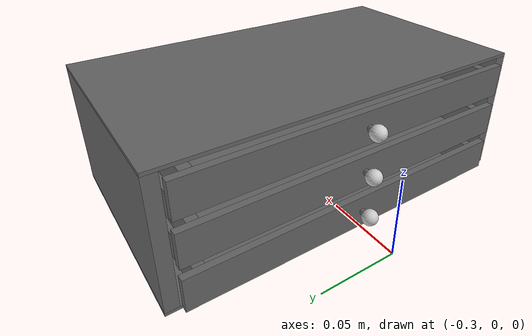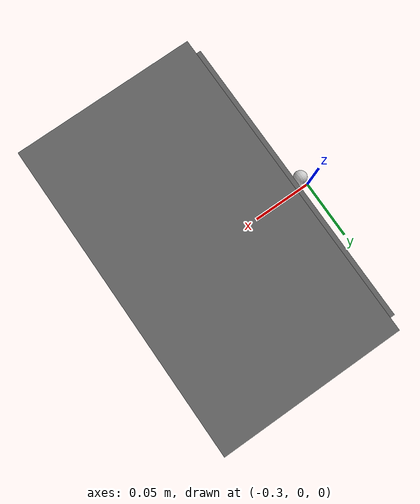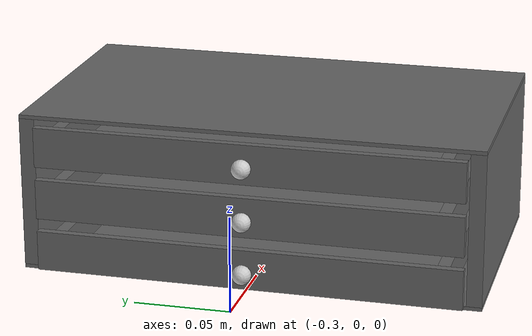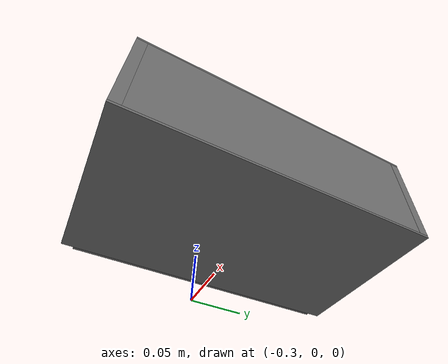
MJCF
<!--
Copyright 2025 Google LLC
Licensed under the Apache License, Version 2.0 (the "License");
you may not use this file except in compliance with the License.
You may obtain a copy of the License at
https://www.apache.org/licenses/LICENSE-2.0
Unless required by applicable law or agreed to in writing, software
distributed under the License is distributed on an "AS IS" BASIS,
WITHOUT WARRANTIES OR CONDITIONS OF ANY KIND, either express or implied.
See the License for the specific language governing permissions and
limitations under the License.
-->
<mujoco model="mk1157_counter">
  <compiler meshdir="meshes" angle="radian" autolimits="true"/>
  <asset>
    <mesh name="mk1157_counter_collision_01" file="/home/bfl3/bfl_works/new_lerobot/lerobot/src/lerobot/simulation/assets/edr/drawer/meshes/mk1157_counter_collision_01.stl" scale="0.4 0.23 0.1"/>
    <mesh name="mk1157_counter_collision_02" file="/home/bfl3/bfl_works/new_lerobot/lerobot/src/lerobot/simulation/assets/edr/drawer/meshes/mk1157_counter_collision_02.stl" scale="0.4 0.23 0.1"/>
    <mesh name="mk1157_counter_collision_03" file="/home/bfl3/bfl_works/new_lerobot/lerobot/src/lerobot/simulation/assets/edr/drawer/meshes/mk1157_counter_collision_03.stl" scale="0.4 0.23 0.1"/>
    <mesh name="mk1157_counter_collision_04" file="/home/bfl3/bfl_works/new_lerobot/lerobot/src/lerobot/simulation/assets/edr/drawer/meshes/mk1157_counter_collision_04.stl" scale="0.4 0.23 0.1"/>
    <mesh name="mk1157_counter_collision_05" file="/home/bfl3/bfl_works/new_lerobot/lerobot/src/lerobot/simulation/assets/edr/drawer/meshes/mk1157_counter_collision_05.stl" scale="0.4 0.23 0.1"/>
    <mesh name="mk1157_counter_collision_06" file="/home/bfl3/bfl_works/new_lerobot/lerobot/src/lerobot/simulation/assets/edr/drawer/meshes/mk1157_counter_collision_06.stl" scale="0.4 0.23 0.1"/>
    <mesh name="mk1157_counter_collision_07" file="/home/bfl3/bfl_works/new_lerobot/lerobot/src/lerobot/simulation/assets/edr/drawer/meshes/mk1157_counter_collision_07.stl" scale="0.4 0.23 0.1"/>
    <mesh name="mk1157_drawer_collision_01" file="/home/bfl3/bfl_works/new_lerobot/lerobot/src/lerobot/simulation/assets/edr/drawer/meshes/mk1157_drawer_collision_01.stl" scale="0.37 0.23 0.15"/>
    <mesh name="mk1157_drawer_collision_02" file="/home/bfl3/bfl_works/new_lerobot/lerobot/src/lerobot/simulation/assets/edr/drawer/meshes/mk1157_drawer_collision_02.stl" scale="0.37 0.23 0.15"/>
    <mesh name="mk1157_drawer_collision_03" file="/home/bfl3/bfl_works/new_lerobot/lerobot/src/lerobot/simulation/assets/edr/drawer/meshes/mk1157_drawer_collision_03.stl" scale="0.37 0.23 0.15"/>
    <mesh name="mk1157_drawer_collision_04" file="/home/bfl3/bfl_works/new_lerobot/lerobot/src/lerobot/simulation/assets/edr/drawer/meshes/mk1157_drawer_collision_04.stl" scale="0.37 0.23 0.15"/>
    <mesh name="mk1157_drawer_collision_05" file="/home/bfl3/bfl_works/new_lerobot/lerobot/src/lerobot/simulation/assets/edr/drawer/meshes/mk1157_drawer_collision_05.stl" scale="0.37 0.23 0.15"/>
  </asset>
  <worldbody>
   <body name="drawer" pos="-0.2 0 0" euler="0 0 -1.57">

    <geom type="mesh" name="counter_top" rgba="0.4 0.4 0.4 1" mesh="mk1157_counter_collision_01"/>
    <geom type="mesh" name="counter_bottom" rgba="0.4 0.4 0.4 1" mesh="mk1157_counter_collision_02"/>
    <geom type="mesh" name="counter_right"  rgba="0.4 0.4 0.4 1" mesh="mk1157_counter_collision_03"/>
    <geom type="mesh" name="counter_back"   rgba="0.4 0.4 0.4 1" mesh="mk1157_counter_collision_05"/>
    <geom type="mesh" name="counter_left"   rgba="0.4 0.4 0.4 1" mesh="mk1157_counter_collision_06"/>
    <body name="link_top_drawer_low" pos="0 0 0.068">
      <joint name="joint_top_drawer_low" pos="0 0 0" axis="0 -1 0" type="slide" range="0 0.1" damping="5"/>
      <geom type="cylinder" rgba="0.4 0.4 0.4 1" size="0.002 0.002" density="200" pos="0.0 -0.075 0" quat=".707107 -0.707107 0 0"/>
      <geom type="sphere" rgba="0.8 0.8 0.8 1" size="0.005" density="200" pos="0.0 -0.08 0" quat=".707107 -0.707107 0 0"/>
      <site name="top_handle" pos="0 -0.3 0.08" size="0.005 0.005 0.005" rgba="1 .1 .1 .3" group="3"/>
      <geom type="mesh" rgba="0.4 0.4 0.4 1" mesh="mk1157_drawer_collision_01" density="200"/>
      <geom type="mesh" rgba="0.4 0.4 0.4 1" mesh="mk1157_drawer_collision_02" density="200"/>
      <geom type="mesh" rgba="0.4 0.4 0.4 1" mesh="mk1157_drawer_collision_03" density="200"/>
      <geom type="mesh" rgba="0.4 0.4 0.4 1" mesh="mk1157_drawer_collision_04" density="200"/>
      <geom type="mesh" name="top" rgba="0.4 0.4 0.4 1" mesh="mk1157_drawer_collision_05" density="200"/>
    </body>
    <body name="link_middle_drawer_low" pos="0 0 0.04">
      <joint name="joint_middle_drawer_low" pos="0 0 0" axis="0 -1 0" type="slide" range="0 0.1" damping="5"/>
      <geom type="cylinder" rgba="0.4 0.4 0.4 1" size="0.002 0.002" density="200" pos="0.0 -0.075 0" quat=".707107 -0.707107 0 0"/>
      <geom type="sphere" rgba="0.8 0.8 0.8 1" size="0.005" density="200" pos="0.0 -0.08 0" quat=".707107 -0.707107 0 0"/>
      <site name="mid_handle" pos="0 -0.35 0.05" size="0.005 0.005 0.005" rgba="1 .1 .1 .3" group="3"/>
      <geom type="mesh" rgba="0.4 0.4 0.4 1" mesh="mk1157_drawer_collision_01" density="200"/>
      <geom type="mesh" rgba="0.4 0.4 0.4 1" mesh="mk1157_drawer_collision_02" density="200"/>
      <geom type="mesh" rgba="0.4 0.4 0.4 1" mesh="mk1157_drawer_collision_03" density="200"/>
      <geom type="mesh" rgba="0.4 0.4 0.4 1" mesh="mk1157_drawer_collision_04" density="200"/>
      <geom type="mesh" rgba="0.4 0.4 0.4 1" mesh="mk1157_drawer_collision_05" density="200"/>
    </body>
    <body name="link_bottom_drawer_low" pos="0 0 0.012">
      <joint name="joint_bottom_drawer_low" pos="0 0 0" axis="0 -1 0" type="slide" range="0 0.1" damping="5"/>
      <geom type="cylinder" rgba="0.4 0.4 0.4 1" size="0.002 0.002" density="200" pos="0.0 -0.075 0" quat=".707107 -0.707107 0 0"/>
      <geom type="sphere" rgba="0.8 0.8 0.8 1" size="0.005" density="200" pos="0.0 -0.08 0" quat=".707107 -0.707107 0 0"/>
      <geom type="mesh" rgba="0.4 0.4 0.4 1" mesh="mk1157_drawer_collision_01" density="200"/>
      <geom type="mesh" rgba="0.4 0.4 0.4 1" mesh="mk1157_drawer_collision_02" density="200"/>
      <geom type="mesh" rgba="0.4 0.4 0.4 1" mesh="mk1157_drawer_collision_03" density="200"/>
      <geom type="mesh" rgba="0.4 0.4 0.4 1" mesh="mk1157_drawer_collision_04" density="200"/>
      <geom type="mesh" rgba="0.4 0.4 0.4 1" mesh="mk1157_drawer_collision_05" density="200"/>
    </body>
   </body>
  </worldbody>
</mujoco>
